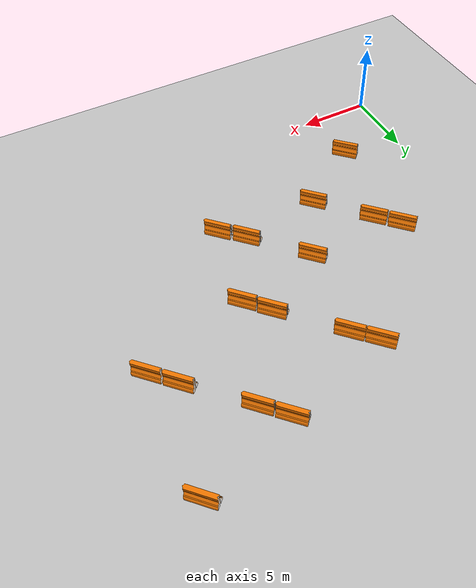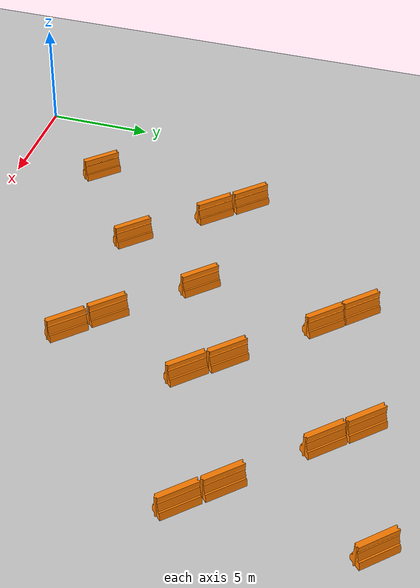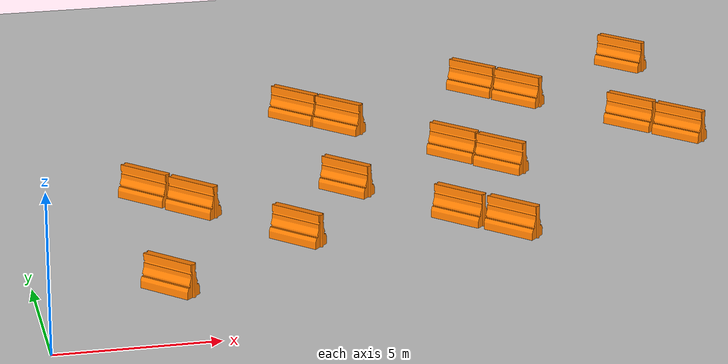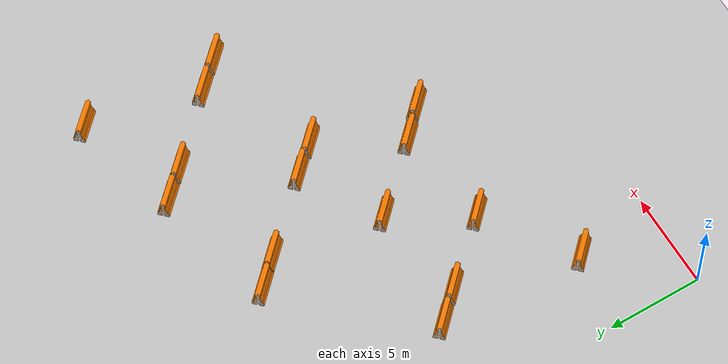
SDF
<sdf version="1.7">
 <world name="default">
  <light name="sun" type="directional">
   <pose>0 0 10 0 -0 0</pose>
   <diffuse>0.8 0.8 0.8 1</diffuse>
   <specular>0.2 0.2 0.2 1</specular>
   <attenuation>
    <range>1000</range>
    <constant>0.9</constant>
    <linear>0.01</linear>
    <quadratic>0.001</quadratic>
   </attenuation>
   <direction>-0.5 0.1 -0.9</direction>
   <spot><inner_angle>0</inner_angle><outer_angle>0</outer_angle><falloff>0</falloff></spot>
  </light>
  <model name="ground_plane">
   <static>1</static>
   <link name="link">
    <collision name="collision">
     <geometry><plane><normal>0 0 1</normal><size>100 100</size></plane></geometry>
     <surface><friction><ode><mu>100</mu><mu2>50</mu2></ode></friction></surface>
    </collision>
    <visual name="visual">
     <cast_shadows>0</cast_shadows>
     <geometry><plane><normal>0 0 1</normal><size>100 100</size></plane></geometry>
     <material>
      <script><uri>file://media/materials/scripts/gazebo.material</uri><name>Gazebo/Grey</name></script>
     </material>
    </visual>
    <velocity_decay><linear>0</linear><angular>0</angular></velocity_decay>
   </link>
  </model>
  <physics type="ode">
   <max_step_size>0.001</max_step_size>
   <real_time_factor>1</real_time_factor>
   <real_time_update_rate>1000</real_time_update_rate>
  </physics>
  <scene><ambient>0.4 0.4 0.4 1</ambient><background>0.7 0.7 0.7 1</background><shadows>1</shadows></scene>
  <spherical_coordinates>
   <surface_model>EARTH_WGS84</surface_model>
   <latitude_deg>0</latitude_deg>
   <longitude_deg>0</longitude_deg>
   <elevation>0</elevation>
   <heading_deg>0</heading_deg>
  </spherical_coordinates>
  <gravity>0 0 -9.8</gravity>
  <magnetic_field>6e-06 2.3e-05 -4.2e-05</magnetic_field>
  <atmosphere type="adiabatic"/>
  <model name="drc_practice_organge_jersey_barrier_0_clone_2_clone_clone_clone_1_clone_clone_1_clone_clone_28_clone_0_clone_clone">
   <static>1</static>
   <link name="link">
    <visual name="visual">
     <geometry>
      <mesh><uri>model://drc_practice_orange_jersey_barrier/meshes/jersey_barrier.dae</uri></mesh>
     </geometry>
    </visual>
    <collision name="collision">
     <geometry>
      <mesh><uri>model://drc_practice_orange_jersey_barrier/meshes/jersey_barrier.dae</uri></mesh>
     </geometry>
    </collision>
   </link>
   <pose>4.06524 4.09206 0 0 -0 0.785</pose>
  </model>
  <model name="drc_practice_organge_jersey_barrier_0_clone_2_clone_clone_clone_1_clone_clone_1_clone_clone_28_clone_0_clone_clone_0_clone">
   <static>1</static>
   <link name="link">
    <visual name="visual">
     <geometry>
      <mesh><uri>model://drc_practice_orange_jersey_barrier/meshes/jersey_barrier.dae</uri></mesh>
     </geometry>
    </visual>
    <collision name="collision">
     <geometry>
      <mesh><uri>model://drc_practice_orange_jersey_barrier/meshes/jersey_barrier.dae</uri></mesh>
     </geometry>
    </collision>
   </link>
   <pose>8.55832 7.29089 0 0 -0 0.785</pose>
  </model>
  <model name="drc_practice_organge_jersey_barrier_0_clone_2_clone_clone_clone_1_clone_clone_1_clone_clone_28_clone_0_clone_clone_0_clone_clone">
   <static>1</static>
   <link name="link">
    <visual name="visual">
     <geometry>
      <mesh><uri>model://drc_practice_orange_jersey_barrier/meshes/jersey_barrier.dae</uri></mesh>
     </geometry>
    </visual>
    <collision name="collision">
     <geometry>
      <mesh><uri>model://drc_practice_orange_jersey_barrier/meshes/jersey_barrier.dae</uri></mesh>
     </geometry>
    </collision>
   </link>
   <pose>10.8795 11.2194 0 0 -0 0.785</pose>
  </model>
  <model name="drc_practice_organge_jersey_barrier_0_clone_2_clone_clone_clone_1_clone_clone_1_clone_clone_28_clone_0_clone_clone_5_clone_0">
   <static>1</static>
   <link name="link">
    <visual name="visual">
     <geometry>
      <mesh><uri>model://drc_practice_orange_jersey_barrier/meshes/jersey_barrier.dae</uri></mesh>
     </geometry>
    </visual>
    <collision name="collision">
     <geometry>
      <mesh><uri>model://drc_practice_orange_jersey_barrier/meshes/jersey_barrier.dae</uri></mesh>
     </geometry>
    </collision>
   </link>
   <pose>14.9888 13.6565 0 0 -0 0.785</pose>
  </model>
  <model name="drc_practice_organge_jersey_barrier_0_clone_2_clone_clone_clone_1_clone_clone_1_clone_clone_28_clone_0_clone_clone_9_clone_clone_clone">
   <static>1</static>
   <link name="link">
    <visual name="visual">
     <geometry>
      <mesh><uri>model://drc_practice_orange_jersey_barrier/meshes/jersey_barrier.dae</uri></mesh>
     </geometry>
    </visual>
    <collision name="collision">
     <geometry>
      <mesh><uri>model://drc_practice_orange_jersey_barrier/meshes/jersey_barrier.dae</uri></mesh>
     </geometry>
    </collision>
   </link>
   <pose>22.8211 21.3974 0 0 -0 0.785</pose>
  </model>
  <model name="drc_practice_organge_jersey_barrier_0_clone_2_clone_clone_clone_1_clone_clone_1_clone_clone_28_clone_0_clone_clone_5_clone_clone">
   <static>1</static>
   <link name="link">
    <visual name="visual">
     <geometry>
      <mesh><uri>model://drc_practice_orange_jersey_barrier/meshes/jersey_barrier.dae</uri></mesh>
     </geometry>
    </visual>
    <collision name="collision">
     <geometry>
      <mesh><uri>model://drc_practice_orange_jersey_barrier/meshes/jersey_barrier.dae</uri></mesh>
     </geometry>
    </collision>
   </link>
   <pose>18.3623 18.5052 0 0 -0 0.785</pose>
  </model>
  <model name="drc_practice_organge_jersey_barrier_0_clone_2_clone_clone_clone_1_clone_clone_1_clone_clone_28_clone_0_clone_clone_0_clone_clone_0">
   <static>1</static>
   <link name="link">
    <visual name="visual">
     <geometry>
      <mesh><uri>model://drc_practice_orange_jersey_barrier/meshes/jersey_barrier.dae</uri></mesh>
     </geometry>
    </visual>
    <collision name="collision">
     <geometry>
      <mesh><uri>model://drc_practice_orange_jersey_barrier/meshes/jersey_barrier.dae</uri></mesh>
     </geometry>
    </collision>
   </link>
   <pose>13.8867 7.99779 0 0 -0 0.785</pose>
  </model>
  <model name="drc_practice_organge_jersey_barrier_0_clone_2_clone_clone_clone_1_clone_clone_1_clone_clone_28_clone_0_clone_clone_0_clone_clone_1">
   <static>1</static>
   <link name="link">
    <visual name="visual">
     <geometry>
      <mesh><uri>model://drc_practice_orange_jersey_barrier/meshes/jersey_barrier.dae</uri></mesh>
     </geometry>
    </visual>
    <collision name="collision">
     <geometry>
      <mesh><uri>model://drc_practice_orange_jersey_barrier/meshes/jersey_barrier.dae</uri></mesh>
     </geometry>
    </collision>
   </link>
   <pose>5.75335 10.3851 0 0 -0 0.785</pose>
  </model>
  <model name="drc_practice_organge_jersey_barrier_0_clone_2_clone_clone_clone_1_clone_clone_1_clone_clone_28_clone_0_clone_clone_0_clone_clone_2">
   <static>1</static>
   <link name="link">
    <visual name="visual">
     <geometry>
      <mesh><uri>model://drc_practice_orange_jersey_barrier/meshes/jersey_barrier.dae</uri></mesh>
     </geometry>
    </visual>
    <collision name="collision">
     <geometry>
      <mesh><uri>model://drc_practice_orange_jersey_barrier/meshes/jersey_barrier.dae</uri></mesh>
     </geometry>
    </collision>
   </link>
   <pose>11.779 17.0222 0 0 -0 0.785</pose>
  </model>
  <model name="drc_practice_organge_jersey_barrier_0_clone_2_clone_clone_clone_1_clone_clone_1_clone_clone_28_clone_0_clone_clone_0_clone_clone_0_clone">
   <static>1</static>
   <link name="link">
    <visual name="visual">
     <geometry>
      <mesh><uri>model://drc_practice_orange_jersey_barrier/meshes/jersey_barrier.dae</uri></mesh>
     </geometry>
    </visual>
    <collision name="collision">
     <geometry>
      <mesh><uri>model://drc_practice_orange_jersey_barrier/meshes/jersey_barrier.dae</uri></mesh>
     </geometry>
    </collision>
   </link>
   <pose>15.2915 6.65008 0 0 -0 0.785</pose>
  </model>
  <model name="drc_practice_organge_jersey_barrier_0_clone_2_clone_clone_clone_1_clone_clone_1_clone_clone_28_clone_0_clone_clone_0_clone_clone_0_clone_0">
   <static>1</static>
   <link name="link">
    <visual name="visual">
     <geometry>
      <mesh><uri>model://drc_practice_orange_jersey_barrier/meshes/jersey_barrier.dae</uri></mesh>
     </geometry>
    </visual>
    <collision name="collision">
     <geometry>
      <mesh><uri>model://drc_practice_orange_jersey_barrier/meshes/jersey_barrier.dae</uri></mesh>
     </geometry>
    </collision>
   </link>
   <pose>4.43337 11.7609 0 0 -0 0.785</pose>
  </model>
  <model name="drc_practice_organge_jersey_barrier_0_clone_2_clone_clone_clone_1_clone_clone_1_clone_clone_28_clone_0_clone_clone_0_clone_clone_0_clone_clone">
   <static>1</static>
   <link name="link">
    <visual name="visual">
     <geometry>
      <mesh><uri>model://drc_practice_orange_jersey_barrier/meshes/jersey_barrier.dae</uri></mesh>
     </geometry>
    </visual>
    <collision name="collision">
     <geometry>
      <mesh><uri>model://drc_practice_orange_jersey_barrier/meshes/jersey_barrier.dae</uri></mesh>
     </geometry>
    </collision>
   </link>
   <pose>21.5246 15.3684 0 0 -0 0.785</pose>
  </model>
  <model name="drc_practice_organge_jersey_barrier_0_clone_2_clone_clone_clone_1_clone_clone_1_clone_clone_28_clone_0_clone_clone_0_clone_clone_0_clone_clone_0">
   <static>1</static>
   <link name="link">
    <visual name="visual">
     <geometry>
      <mesh><uri>model://drc_practice_orange_jersey_barrier/meshes/jersey_barrier.dae</uri></mesh>
     </geometry>
    </visual>
    <collision name="collision">
     <geometry>
      <mesh><uri>model://drc_practice_orange_jersey_barrier/meshes/jersey_barrier.dae</uri></mesh>
     </geometry>
    </collision>
   </link>
   <pose>22.8429 14.0094 0 0 -0 0.785</pose>
  </model>
  <model name="drc_practice_organge_jersey_barrier_0_clone_2_clone_clone_clone_1_clone_clone_1_clone_clone_28_clone_0_clone_clone_0_clone_clone_0_clone_clone_1">
   <static>1</static>
   <link name="link">
    <visual name="visual">
     <geometry>
      <mesh><uri>model://drc_practice_orange_jersey_barrier/meshes/jersey_barrier.dae</uri></mesh>
     </geometry>
    </visual>
    <collision name="collision">
     <geometry>
      <mesh><uri>model://drc_practice_orange_jersey_barrier/meshes/jersey_barrier.dae</uri></mesh>
     </geometry>
    </collision>
   </link>
   <pose>10.4845 18.3124 0 0 -0 0.785</pose>
  </model>
  <model name="drc_practice_organge_jersey_barrier_0_clone_2_clone_clone_clone_1_clone_clone_1_clone_clone_28_clone_0_clone_clone_0_clone_clone_0_clone_clone_2">
   <static>1</static>
   <link name="link">
    <visual name="visual">
     <geometry>
      <mesh><uri>model://drc_practice_orange_jersey_barrier/meshes/jersey_barrier.dae</uri></mesh>
     </geometry>
    </visual>
    <collision name="collision">
     <geometry>
      <mesh><uri>model://drc_practice_orange_jersey_barrier/meshes/jersey_barrier.dae</uri></mesh>
     </geometry>
    </collision>
   </link>
   <pose>17.0571 19.8503 0 0 -0 0.785</pose>
  </model>
  <model name="drc_practice_organge_jersey_barrier_0_clone_2_clone_clone_clone_1_clone_clone_1_clone_clone_28_clone_0_clone_clone_0_clone_clone_0_clone_clone_3">
   <static>1</static>
   <link name="link">
    <visual name="visual">
     <geometry>
      <mesh><uri>model://drc_practice_orange_jersey_barrier/meshes/jersey_barrier.dae</uri></mesh>
     </geometry>
    </visual>
    <collision name="collision">
     <geometry>
      <mesh><uri>model://drc_practice_orange_jersey_barrier/meshes/jersey_barrier.dae</uri></mesh>
     </geometry>
    </collision>
   </link>
   <pose>16.2569 12.2807 0 0 -0 0.785</pose>
  </model>
 </world>
</sdf>
